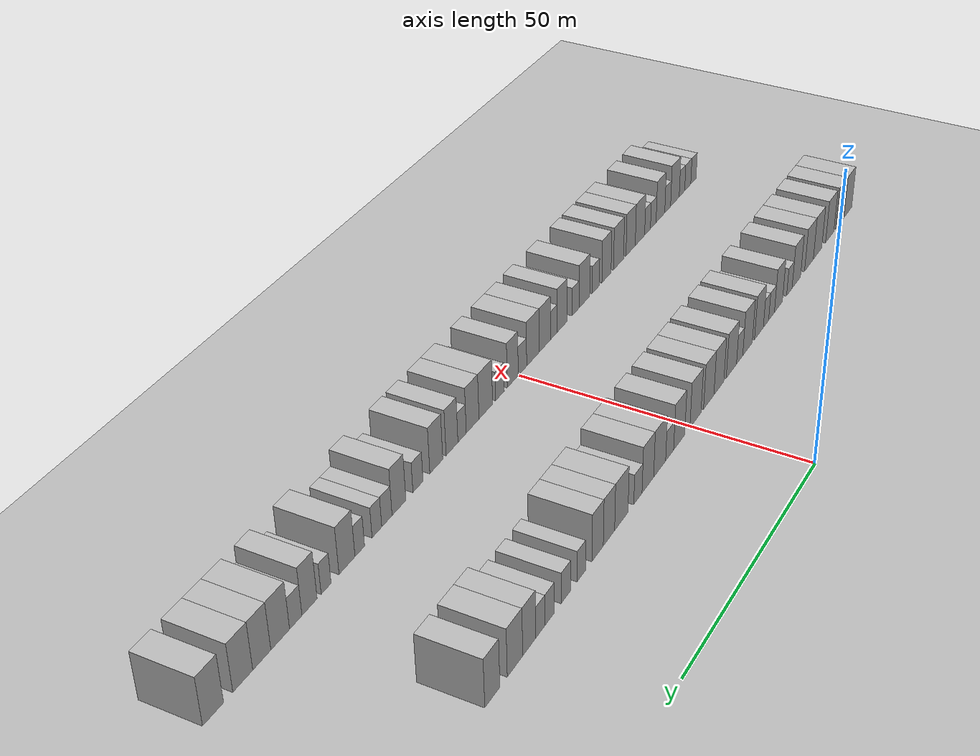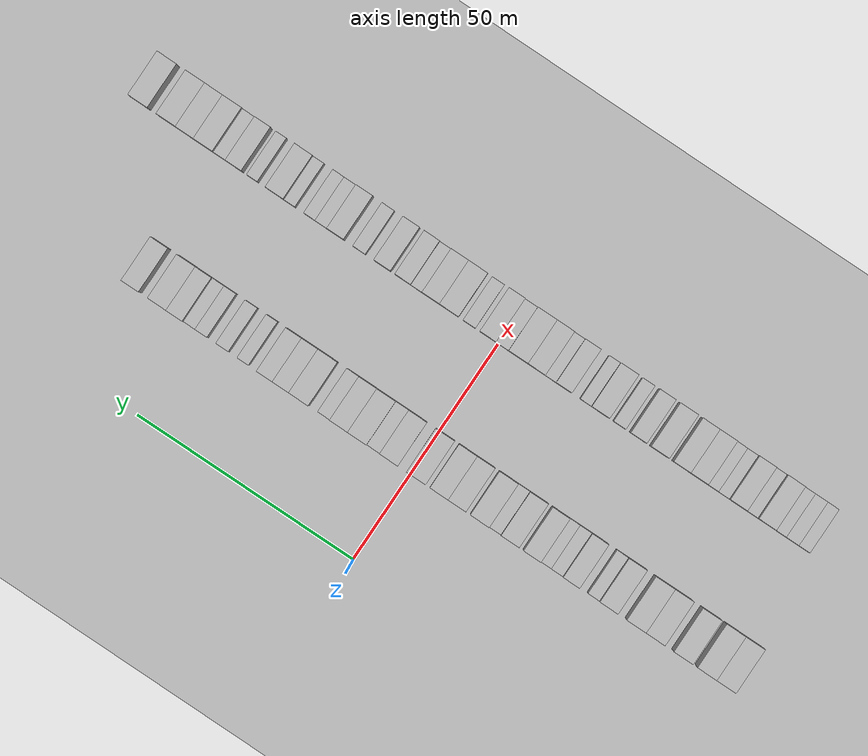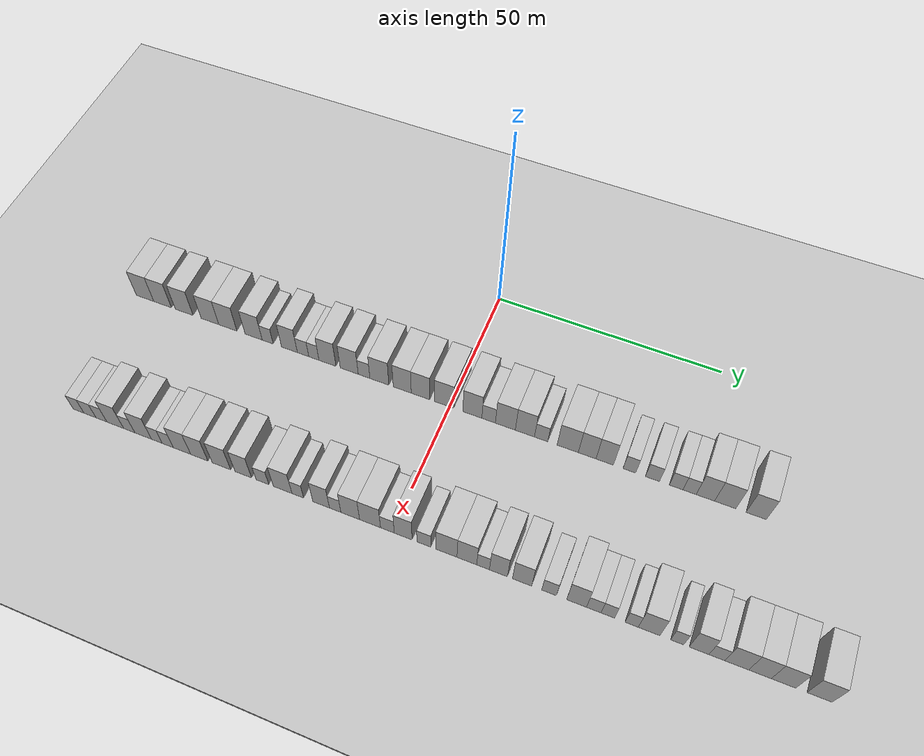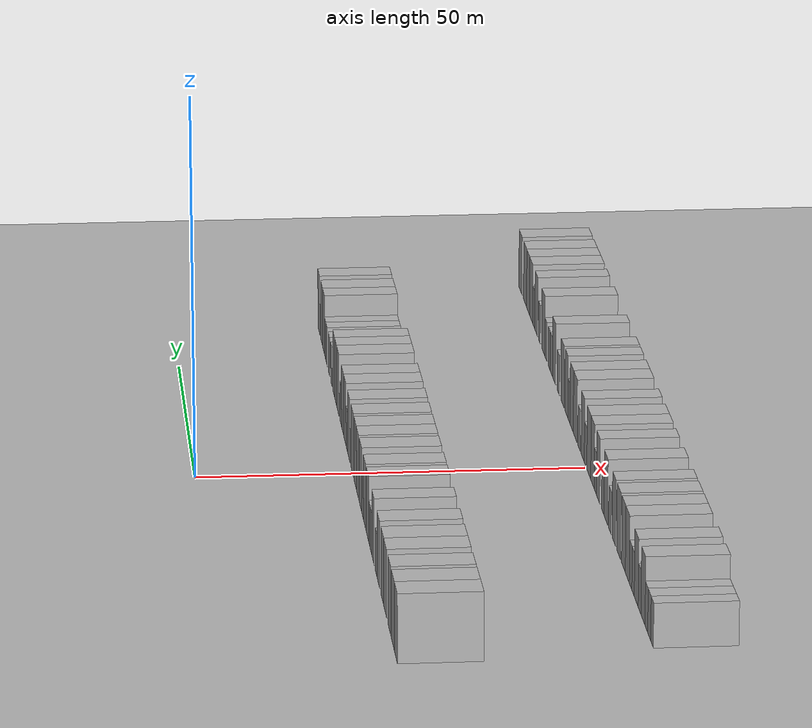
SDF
<sdf version="1.6">
 <world name="default">
  <include><name>ground_plane_1</name><uri>model://HANNAS_ground_plane</uri></include>
  <include>
   <name>ground_plane_2</name>
   <uri>model://HANNAS_ground_plane</uri>
   <pose>100 0 0  0 0 0</pose>
  </include>
  <model name="building_40">
   <static>1</static>
   <pose>25.0000 -72.2485 0 0.000000 0.000000 0.000000</pose>
   <link name="link">
    <pose>0 0 4.50 0 0 0</pose>
    <collision name="collision"><geometry><box><size>10.0000 4.4059 9.0000</size></box></geometry></collision>
    <visual name="visual">
     <cast_shadows>0</cast_shadows>
     <geometry><box><size>10.0000 4.4059 9.0000</size></box></geometry>
     <material>
      <script>
       <uri>model://HANNAS_wall/materials/scripts</uri>
       <uri>model://HANNAS_wall/materials/textures</uri>
       <name>vrc/HANNAS_wall</name>
      </script>
     </material>
    </visual>
   </link>
  </model>
  <model name="building_41">
   <static>1</static>
   <pose>25.0000 -67.8349 0 0.000000 0.000000 0.000000</pose>
   <link name="link">
    <pose>0 0 4.50 0 0 0</pose>
    <collision name="collision"><geometry><box><size>10.0000 4.4214 9.0000</size></box></geometry></collision>
    <visual name="visual">
     <cast_shadows>0</cast_shadows>
     <geometry><box><size>10.0000 4.4214 9.0000</size></box></geometry>
     <material>
      <script>
       <uri>model://HANNAS_wall/materials/scripts</uri>
       <uri>model://HANNAS_wall/materials/textures</uri>
       <name>vrc/HANNAS_wall</name>
      </script>
     </material>
    </visual>
   </link>
  </model>
  <model name="building_42">
   <static>1</static>
   <pose>25.0000 -62.4204 0 0.000000 0.000000 0.000000</pose>
   <link name="link">
    <pose>0 0 4.50 0 0 0</pose>
    <collision name="collision"><geometry><box><size>10.0000 4.4075 9.0000</size></box></geometry></collision>
    <visual name="visual">
     <cast_shadows>0</cast_shadows>
     <geometry><box><size>10.0000 4.4075 9.0000</size></box></geometry>
     <material>
      <script>
       <uri>model://HANNAS_wall/materials/scripts</uri>
       <uri>model://HANNAS_wall/materials/textures</uri>
       <name>vrc/HANNAS_wall</name>
      </script>
     </material>
    </visual>
   </link>
  </model>
  <model name="building_43">
   <static>1</static>
   <pose>25.0000 -56.0462 0 0.000000 0.000000 0.000000</pose>
   <link name="link">
    <pose>0 0 4.50 0 0 0</pose>
    <collision name="collision"><geometry><box><size>10.0000 4.3410 9.0000</size></box></geometry></collision>
    <visual name="visual">
     <cast_shadows>0</cast_shadows>
     <geometry><box><size>10.0000 4.3410 9.0000</size></box></geometry>
     <material>
      <script>
       <uri>model://HANNAS_wall/materials/scripts</uri>
       <uri>model://HANNAS_wall/materials/textures</uri>
       <name>vrc/HANNAS_wall</name>
      </script>
     </material>
    </visual>
   </link>
  </model>
  <model name="building_44">
   <static>1</static>
   <pose>25.0000 -51.6642 0 0.000000 0.000000 0.000000</pose>
   <link name="link">
    <pose>0 0 4.50 0 0 0</pose>
    <collision name="collision"><geometry><box><size>10.0000 4.4228 9.0000</size></box></geometry></collision>
    <visual name="visual">
     <cast_shadows>0</cast_shadows>
     <geometry><box><size>10.0000 4.4228 9.0000</size></box></geometry>
     <material>
      <script>
       <uri>model://HANNAS_wall/materials/scripts</uri>
       <uri>model://HANNAS_wall/materials/textures</uri>
       <name>vrc/HANNAS_wall</name>
      </script>
     </material>
    </visual>
   </link>
  </model>
  <model name="building_45">
   <static>1</static>
   <pose>25.0000 -45.3757 0 0.000000 0.000000 0.000000</pose>
   <link name="link">
    <pose>0 0 4.50 0 0 0</pose>
    <collision name="collision"><geometry><box><size>10.0000 4.1543 9.0000</size></box></geometry></collision>
    <visual name="visual">
     <cast_shadows>0</cast_shadows>
     <geometry><box><size>10.0000 4.1543 9.0000</size></box></geometry>
     <material>
      <script>
       <uri>model://HANNAS_wall/materials/scripts</uri>
       <uri>model://HANNAS_wall/materials/textures</uri>
       <name>vrc/HANNAS_wall</name>
      </script>
     </material>
    </visual>
   </link>
  </model>
  <model name="building_46">
   <static>1</static>
   <pose>25.0000 -41.9876 0 0.000000 0.000000 0.000000</pose>
   <link name="link">
    <pose>0 0 3.00 0 0 0</pose>
    <collision name="collision"><geometry><box><size>10.0000 2.6219 6.0000</size></box></geometry></collision>
    <visual name="visual">
     <cast_shadows>0</cast_shadows>
     <geometry><box><size>10.0000 2.6219 6.0000</size></box></geometry>
     <material>
      <script>
       <uri>model://HANNAS_wall/materials/scripts</uri>
       <uri>model://HANNAS_wall/materials/textures</uri>
       <name>vrc/HANNAS_wall</name>
      </script>
     </material>
    </visual>
   </link>
  </model>
  <model name="building_47">
   <static>1</static>
   <pose>25.0000 -36.7906 0 0.000000 0.000000 0.000000</pose>
   <link name="link">
    <pose>0 0 4.50 0 0 0</pose>
    <collision name="collision"><geometry><box><size>10.0000 3.7721 9.0000</size></box></geometry></collision>
    <visual name="visual">
     <cast_shadows>0</cast_shadows>
     <geometry><box><size>10.0000 3.7721 9.0000</size></box></geometry>
     <material>
      <script>
       <uri>model://HANNAS_wall/materials/scripts</uri>
       <uri>model://HANNAS_wall/materials/textures</uri>
       <name>vrc/HANNAS_wall</name>
      </script>
     </material>
    </visual>
   </link>
  </model>
  <model name="building_48">
   <static>1</static>
   <pose>25.0000 -33.5613 0 0.000000 0.000000 0.000000</pose>
   <link name="link">
    <pose>0 0 3.00 0 0 0</pose>
    <collision name="collision"><geometry><box><size>10.0000 2.6865 6.0000</size></box></geometry></collision>
    <visual name="visual">
     <cast_shadows>0</cast_shadows>
     <geometry><box><size>10.0000 2.6865 6.0000</size></box></geometry>
     <material>
      <script>
       <uri>model://HANNAS_wall/materials/scripts</uri>
       <uri>model://HANNAS_wall/materials/textures</uri>
       <name>vrc/HANNAS_wall</name>
      </script>
     </material>
    </visual>
   </link>
  </model>
  <model name="building_49">
   <static>1</static>
   <pose>25.0000 -31.0136 0 0.000000 0.000000 0.000000</pose>
   <link name="link">
    <pose>0 0 3.00 0 0 0</pose>
    <collision name="collision"><geometry><box><size>10.0000 2.4090 6.0000</size></box></geometry></collision>
    <visual name="visual">
     <cast_shadows>0</cast_shadows>
     <geometry><box><size>10.0000 2.4090 6.0000</size></box></geometry>
     <material>
      <script>
       <uri>model://HANNAS_wall/materials/scripts</uri>
       <uri>model://HANNAS_wall/materials/textures</uri>
       <name>vrc/HANNAS_wall</name>
      </script>
     </material>
    </visual>
   </link>
  </model>
  <model name="building_50">
   <static>1</static>
   <pose>25.0000 -27.8173 0 0.000000 0.000000 0.000000</pose>
   <link name="link">
    <pose>0 0 4.50 0 0 0</pose>
    <collision name="collision"><geometry><box><size>10.0000 3.9836 9.0000</size></box></geometry></collision>
    <visual name="visual">
     <cast_shadows>0</cast_shadows>
     <geometry><box><size>10.0000 3.9836 9.0000</size></box></geometry>
     <material>
      <script>
       <uri>model://HANNAS_wall/materials/scripts</uri>
       <uri>model://HANNAS_wall/materials/textures</uri>
       <name>vrc/HANNAS_wall</name>
      </script>
     </material>
    </visual>
   </link>
  </model>
  <model name="building_51">
   <static>1</static>
   <pose>25.0000 -22.7435 0 0.000000 0.000000 0.000000</pose>
   <link name="link">
    <pose>0 0 4.50 0 0 0</pose>
    <collision name="collision"><geometry><box><size>10.0000 4.1639 9.0000</size></box></geometry></collision>
    <visual name="visual">
     <cast_shadows>0</cast_shadows>
     <geometry><box><size>10.0000 4.1639 9.0000</size></box></geometry>
     <material>
      <script>
       <uri>model://HANNAS_wall/materials/scripts</uri>
       <uri>model://HANNAS_wall/materials/textures</uri>
       <name>vrc/HANNAS_wall</name>
      </script>
     </material>
    </visual>
   </link>
  </model>
  <model name="building_52">
   <static>1</static>
   <pose>25.0000 -19.3129 0 0.000000 0.000000 0.000000</pose>
   <link name="link">
    <pose>0 0 3.00 0 0 0</pose>
    <collision name="collision"><geometry><box><size>10.0000 2.6973 6.0000</size></box></geometry></collision>
    <visual name="visual">
     <cast_shadows>0</cast_shadows>
     <geometry><box><size>10.0000 2.6973 6.0000</size></box></geometry>
     <material>
      <script>
       <uri>model://HANNAS_wall/materials/scripts</uri>
       <uri>model://HANNAS_wall/materials/textures</uri>
       <name>vrc/HANNAS_wall</name>
      </script>
     </material>
    </visual>
   </link>
  </model>
  <model name="building_53">
   <static>1</static>
   <pose>25.0000 -15.7934 0 0.000000 0.000000 0.000000</pose>
   <link name="link">
    <pose>0 0 4.50 0 0 0</pose>
    <collision name="collision"><geometry><box><size>10.0000 4.3418 9.0000</size></box></geometry></collision>
    <visual name="visual">
     <cast_shadows>0</cast_shadows>
     <geometry><box><size>10.0000 4.3418 9.0000</size></box></geometry>
     <material>
      <script>
       <uri>model://HANNAS_wall/materials/scripts</uri>
       <uri>model://HANNAS_wall/materials/textures</uri>
       <name>vrc/HANNAS_wall</name>
      </script>
     </material>
    </visual>
   </link>
  </model>
  <model name="building_54">
   <static>1</static>
   <pose>25.0000 -10.5797 0 0.000000 0.000000 0.000000</pose>
   <link name="link">
    <pose>0 0 4.50 0 0 0</pose>
    <collision name="collision"><geometry><box><size>10.0000 4.0856 9.0000</size></box></geometry></collision>
    <visual name="visual">
     <cast_shadows>0</cast_shadows>
     <geometry><box><size>10.0000 4.0856 9.0000</size></box></geometry>
     <material>
      <script>
       <uri>model://HANNAS_wall/materials/scripts</uri>
       <uri>model://HANNAS_wall/materials/textures</uri>
       <name>vrc/HANNAS_wall</name>
      </script>
     </material>
    </visual>
   </link>
  </model>
  <model name="building_55">
   <static>1</static>
   <pose>25.0000 -6.4519 0 0.000000 0.000000 0.000000</pose>
   <link name="link">
    <pose>0 0 4.50 0 0 0</pose>
    <collision name="collision"><geometry><box><size>10.0000 4.1700 9.0000</size></box></geometry></collision>
    <visual name="visual">
     <cast_shadows>0</cast_shadows>
     <geometry><box><size>10.0000 4.1700 9.0000</size></box></geometry>
     <material>
      <script>
       <uri>model://HANNAS_wall/materials/scripts</uri>
       <uri>model://HANNAS_wall/materials/textures</uri>
       <name>vrc/HANNAS_wall</name>
      </script>
     </material>
    </visual>
   </link>
  </model>
  <model name="building_56">
   <static>1</static>
   <pose>25.0000 -1.1857 0 0.000000 0.000000 0.000000</pose>
   <link name="link">
    <pose>0 0 4.50 0 0 0</pose>
    <collision name="collision"><geometry><box><size>10.0000 4.3624 9.0000</size></box></geometry></collision>
    <visual name="visual">
     <cast_shadows>0</cast_shadows>
     <geometry><box><size>10.0000 4.3624 9.0000</size></box></geometry>
     <material>
      <script>
       <uri>model://HANNAS_wall/materials/scripts</uri>
       <uri>model://HANNAS_wall/materials/textures</uri>
       <name>vrc/HANNAS_wall</name>
      </script>
     </material>
    </visual>
   </link>
  </model>
  <model name="building_57">
   <static>1</static>
   <pose>25.0000 5.0952 0 0.000000 0.000000 0.000000</pose>
   <link name="link">
    <pose>0 0 4.50 0 0 0</pose>
    <collision name="collision"><geometry><box><size>10.0000 4.1995 9.0000</size></box></geometry></collision>
    <visual name="visual">
     <cast_shadows>0</cast_shadows>
     <geometry><box><size>10.0000 4.1995 9.0000</size></box></geometry>
     <material>
      <script>
       <uri>model://HANNAS_wall/materials/scripts</uri>
       <uri>model://HANNAS_wall/materials/textures</uri>
       <name>vrc/HANNAS_wall</name>
      </script>
     </material>
    </visual>
   </link>
  </model>
  <model name="building_58">
   <static>1</static>
   <pose>25.0000 8.6766 0 0.000000 0.000000 0.000000</pose>
   <link name="link">
    <pose>0 0 3.00 0 0 0</pose>
    <collision name="collision"><geometry><box><size>10.0000 2.9633 6.0000</size></box></geometry></collision>
    <visual name="visual">
     <cast_shadows>0</cast_shadows>
     <geometry><box><size>10.0000 2.9633 6.0000</size></box></geometry>
     <material>
      <script>
       <uri>model://HANNAS_wall/materials/scripts</uri>
       <uri>model://HANNAS_wall/materials/textures</uri>
       <name>vrc/HANNAS_wall</name>
      </script>
     </material>
    </visual>
   </link>
  </model>
  <model name="building_59">
   <static>1</static>
   <pose>25.0000 12.3360 0 0.000000 0.000000 0.000000</pose>
   <link name="link">
    <pose>0 0 4.50 0 0 0</pose>
    <collision name="collision"><geometry><box><size>10.0000 4.3555 9.0000</size></box></geometry></collision>
    <visual name="visual">
     <cast_shadows>0</cast_shadows>
     <geometry><box><size>10.0000 4.3555 9.0000</size></box></geometry>
     <material>
      <script>
       <uri>model://HANNAS_wall/materials/scripts</uri>
       <uri>model://HANNAS_wall/materials/textures</uri>
       <name>vrc/HANNAS_wall</name>
      </script>
     </material>
    </visual>
   </link>
  </model>
  <model name="building_60">
   <static>1</static>
   <pose>25.0000 16.5765 0 0.000000 0.000000 0.000000</pose>
   <link name="link">
    <pose>0 0 4.50 0 0 0</pose>
    <collision name="collision"><geometry><box><size>10.0000 4.1255 9.0000</size></box></geometry></collision>
    <visual name="visual">
     <cast_shadows>0</cast_shadows>
     <geometry><box><size>10.0000 4.1255 9.0000</size></box></geometry>
     <material>
      <script>
       <uri>model://HANNAS_wall/materials/scripts</uri>
       <uri>model://HANNAS_wall/materials/textures</uri>
       <name>vrc/HANNAS_wall</name>
      </script>
     </material>
    </visual>
   </link>
  </model>
  <model name="building_61">
   <static>1</static>
   <pose>25.0000 20.0691 0 0.000000 0.000000 0.000000</pose>
   <link name="link">
    <pose>0 0 3.00 0 0 0</pose>
    <collision name="collision"><geometry><box><size>10.0000 2.8598 6.0000</size></box></geometry></collision>
    <visual name="visual">
     <cast_shadows>0</cast_shadows>
     <geometry><box><size>10.0000 2.8598 6.0000</size></box></geometry>
     <material>
      <script>
       <uri>model://HANNAS_wall/materials/scripts</uri>
       <uri>model://HANNAS_wall/materials/textures</uri>
       <name>vrc/HANNAS_wall</name>
      </script>
     </material>
    </visual>
   </link>
  </model>
  <model name="building_62">
   <static>1</static>
   <pose>25.0000 25.7467 0 0.000000 0.000000 0.000000</pose>
   <link name="link">
    <pose>0 0 4.50 0 0 0</pose>
    <collision name="collision"><geometry><box><size>10.0000 4.4954 9.0000</size></box></geometry></collision>
    <visual name="visual">
     <cast_shadows>0</cast_shadows>
     <geometry><box><size>10.0000 4.4954 9.0000</size></box></geometry>
     <material>
      <script>
       <uri>model://HANNAS_wall/materials/scripts</uri>
       <uri>model://HANNAS_wall/materials/textures</uri>
       <name>vrc/HANNAS_wall</name>
      </script>
     </material>
    </visual>
   </link>
  </model>
  <model name="building_63">
   <static>1</static>
   <pose>25.0000 29.8601 0 0.000000 0.000000 0.000000</pose>
   <link name="link">
    <pose>0 0 4.50 0 0 0</pose>
    <collision name="collision"><geometry><box><size>10.0000 3.7314 9.0000</size></box></geometry></collision>
    <visual name="visual">
     <cast_shadows>0</cast_shadows>
     <geometry><box><size>10.0000 3.7314 9.0000</size></box></geometry>
     <material>
      <script>
       <uri>model://HANNAS_wall/materials/scripts</uri>
       <uri>model://HANNAS_wall/materials/textures</uri>
       <name>vrc/HANNAS_wall</name>
      </script>
     </material>
    </visual>
   </link>
  </model>
  <model name="building_64">
   <static>1</static>
   <pose>25.0000 33.5474 0 0.000000 0.000000 0.000000</pose>
   <link name="link">
    <pose>0 0 4.50 0 0 0</pose>
    <collision name="collision"><geometry><box><size>10.0000 3.6432 9.0000</size></box></geometry></collision>
    <visual name="visual">
     <cast_shadows>0</cast_shadows>
     <geometry><box><size>10.0000 3.6432 9.0000</size></box></geometry>
     <material>
      <script>
       <uri>model://HANNAS_wall/materials/scripts</uri>
       <uri>model://HANNAS_wall/materials/textures</uri>
       <name>vrc/HANNAS_wall</name>
      </script>
     </material>
    </visual>
   </link>
  </model>
  <model name="building_65">
   <static>1</static>
   <pose>25.0000 38.6850 0 0.000000 0.000000 0.000000</pose>
   <link name="link">
    <pose>0 0 3.00 0 0 0</pose>
    <collision name="collision"><geometry><box><size>10.0000 2.6320 6.0000</size></box></geometry></collision>
    <visual name="visual">
     <cast_shadows>0</cast_shadows>
     <geometry><box><size>10.0000 2.6320 6.0000</size></box></geometry>
     <material>
      <script>
       <uri>model://HANNAS_wall/materials/scripts</uri>
       <uri>model://HANNAS_wall/materials/textures</uri>
       <name>vrc/HANNAS_wall</name>
      </script>
     </material>
    </visual>
   </link>
  </model>
  <model name="building_66">
   <static>1</static>
   <pose>25.0000 43.4471 0 0.000000 0.000000 0.000000</pose>
   <link name="link">
    <pose>0 0 3.00 0 0 0</pose>
    <collision name="collision"><geometry><box><size>10.0000 2.8922 6.0000</size></box></geometry></collision>
    <visual name="visual">
     <cast_shadows>0</cast_shadows>
     <geometry><box><size>10.0000 2.8922 6.0000</size></box></geometry>
     <material>
      <script>
       <uri>model://HANNAS_wall/materials/scripts</uri>
       <uri>model://HANNAS_wall/materials/textures</uri>
       <name>vrc/HANNAS_wall</name>
      </script>
     </material>
    </visual>
   </link>
  </model>
  <model name="building_67">
   <static>1</static>
   <pose>25.0000 48.2819 0 0.000000 0.000000 0.000000</pose>
   <link name="link">
    <pose>0 0 3.00 0 0 0</pose>
    <collision name="collision"><geometry><box><size>10.0000 2.7774 6.0000</size></box></geometry></collision>
    <visual name="visual">
     <cast_shadows>0</cast_shadows>
     <geometry><box><size>10.0000 2.7774 6.0000</size></box></geometry>
     <material>
      <script>
       <uri>model://HANNAS_wall/materials/scripts</uri>
       <uri>model://HANNAS_wall/materials/textures</uri>
       <name>vrc/HANNAS_wall</name>
      </script>
     </material>
    </visual>
   </link>
  </model>
  <model name="building_68">
   <static>1</static>
   <pose>25.0000 51.0041 0 0.000000 0.000000 0.000000</pose>
   <link name="link">
    <pose>0 0 3.00 0 0 0</pose>
    <collision name="collision"><geometry><box><size>10.0000 2.6670 6.0000</size></box></geometry></collision>
    <visual name="visual">
     <cast_shadows>0</cast_shadows>
     <geometry><box><size>10.0000 2.6670 6.0000</size></box></geometry>
     <material>
      <script>
       <uri>model://HANNAS_wall/materials/scripts</uri>
       <uri>model://HANNAS_wall/materials/textures</uri>
       <name>vrc/HANNAS_wall</name>
      </script>
     </material>
    </visual>
   </link>
  </model>
  <model name="building_69">
   <static>1</static>
   <pose>25.0000 54.1952 0 0.000000 0.000000 0.000000</pose>
   <link name="link">
    <pose>0 0 4.50 0 0 0</pose>
    <collision name="collision"><geometry><box><size>10.0000 3.7153 9.0000</size></box></geometry></collision>
    <visual name="visual">
     <cast_shadows>0</cast_shadows>
     <geometry><box><size>10.0000 3.7153 9.0000</size></box></geometry>
     <material>
      <script>
       <uri>model://HANNAS_wall/materials/scripts</uri>
       <uri>model://HANNAS_wall/materials/textures</uri>
       <name>vrc/HANNAS_wall</name>
      </script>
     </material>
    </visual>
   </link>
  </model>
  <model name="building_70">
   <static>1</static>
   <pose>25.0000 58.1823 0 0.000000 0.000000 0.000000</pose>
   <link name="link">
    <pose>0 0 4.50 0 0 0</pose>
    <collision name="collision"><geometry><box><size>10.0000 4.2589 9.0000</size></box></geometry></collision>
    <visual name="visual">
     <cast_shadows>0</cast_shadows>
     <geometry><box><size>10.0000 4.2589 9.0000</size></box></geometry>
     <material>
      <script>
       <uri>model://HANNAS_wall/materials/scripts</uri>
       <uri>model://HANNAS_wall/materials/textures</uri>
       <name>vrc/HANNAS_wall</name>
      </script>
     </material>
    </visual>
   </link>
  </model>
  <model name="building_71">
   <static>1</static>
   <pose>25.0000 64.3200 0 0.000000 0.000000 0.000000</pose>
   <link name="link">
    <pose>0 0 4.50 0 0 0</pose>
    <collision name="collision"><geometry><box><size>10.0000 4.0165 9.0000</size></box></geometry></collision>
    <visual name="visual">
     <cast_shadows>0</cast_shadows>
     <geometry><box><size>10.0000 4.0165 9.0000</size></box></geometry>
     <material>
      <script>
       <uri>model://HANNAS_wall/materials/scripts</uri>
       <uri>model://HANNAS_wall/materials/textures</uri>
       <name>vrc/HANNAS_wall</name>
      </script>
     </material>
    </visual>
   </link>
  </model>
  <model name="building_140">
   <static>1</static>
   <pose>55.0000 -70.2596 0 0.000000 0.000000 0.000000</pose>
   <link name="link">
    <pose>0 0 3.00 0 0 0</pose>
    <collision name="collision"><geometry><box><size>10.0000 2.5643 6.0000</size></box></geometry></collision>
    <visual name="visual">
     <cast_shadows>0</cast_shadows>
     <geometry><box><size>10.0000 2.5643 6.0000</size></box></geometry>
     <material>
      <script>
       <uri>model://HANNAS_wall/materials/scripts</uri>
       <uri>model://HANNAS_wall/materials/textures</uri>
       <name>vrc/HANNAS_wall</name>
      </script>
     </material>
    </visual>
   </link>
  </model>
  <model name="building_141">
   <static>1</static>
   <pose>55.0000 -67.5382 0 0.000000 0.000000 0.000000</pose>
   <link name="link">
    <pose>0 0 3.00 0 0 0</pose>
    <collision name="collision"><geometry><box><size>10.0000 2.8784 6.0000</size></box></geometry></collision>
    <visual name="visual">
     <cast_shadows>0</cast_shadows>
     <geometry><box><size>10.0000 2.8784 6.0000</size></box></geometry>
     <material>
      <script>
       <uri>model://HANNAS_wall/materials/scripts</uri>
       <uri>model://HANNAS_wall/materials/textures</uri>
       <name>vrc/HANNAS_wall</name>
      </script>
     </material>
    </visual>
   </link>
  </model>
  <model name="building_142">
   <static>1</static>
   <pose>55.0000 -64.8120 0 0.000000 0.000000 0.000000</pose>
   <link name="link">
    <pose>0 0 3.00 0 0 0</pose>
    <collision name="collision"><geometry><box><size>10.0000 2.5741 6.0000</size></box></geometry></collision>
    <visual name="visual">
     <cast_shadows>0</cast_shadows>
     <geometry><box><size>10.0000 2.5741 6.0000</size></box></geometry>
     <material>
      <script>
       <uri>model://HANNAS_wall/materials/scripts</uri>
       <uri>model://HANNAS_wall/materials/textures</uri>
       <name>vrc/HANNAS_wall</name>
      </script>
     </material>
    </visual>
   </link>
  </model>
  <model name="building_143">
   <static>1</static>
   <pose>55.0000 -61.5402 0 0.000000 0.000000 0.000000</pose>
   <link name="link">
    <pose>0 0 4.50 0 0 0</pose>
    <collision name="collision"><geometry><box><size>10.0000 3.9696 9.0000</size></box></geometry></collision>
    <visual name="visual">
     <cast_shadows>0</cast_shadows>
     <geometry><box><size>10.0000 3.9696 9.0000</size></box></geometry>
     <material>
      <script>
       <uri>model://HANNAS_wall/materials/scripts</uri>
       <uri>model://HANNAS_wall/materials/textures</uri>
       <name>vrc/HANNAS_wall</name>
      </script>
     </material>
    </visual>
   </link>
  </model>
  <model name="building_144">
   <static>1</static>
   <pose>55.0000 -58.2380 0 0.000000 0.000000 0.000000</pose>
   <link name="link">
    <pose>0 0 3.00 0 0 0</pose>
    <collision name="collision"><geometry><box><size>10.0000 2.6347 6.0000</size></box></geometry></collision>
    <visual name="visual">
     <cast_shadows>0</cast_shadows>
     <geometry><box><size>10.0000 2.6347 6.0000</size></box></geometry>
     <material>
      <script>
       <uri>model://HANNAS_wall/materials/scripts</uri>
       <uri>model://HANNAS_wall/materials/textures</uri>
       <name>vrc/HANNAS_wall</name>
      </script>
     </material>
    </visual>
   </link>
  </model>
  <model name="building_145">
   <static>1</static>
   <pose>55.0000 -54.9687 0 0.000000 0.000000 0.000000</pose>
   <link name="link">
    <pose>0 0 4.50 0 0 0</pose>
    <collision name="collision"><geometry><box><size>10.0000 3.9039 9.0000</size></box></geometry></collision>
    <visual name="visual">
     <cast_shadows>0</cast_shadows>
     <geometry><box><size>10.0000 3.9039 9.0000</size></box></geometry>
     <material>
      <script>
       <uri>model://HANNAS_wall/materials/scripts</uri>
       <uri>model://HANNAS_wall/materials/textures</uri>
       <name>vrc/HANNAS_wall</name>
      </script>
     </material>
    </visual>
   </link>
  </model>
  <model name="building_146">
   <static>1</static>
   <pose>55.0000 -51.7796 0 0.000000 0.000000 0.000000</pose>
   <link name="link">
    <pose>0 0 3.00 0 0 0</pose>
    <collision name="collision"><geometry><box><size>10.0000 2.4742 6.0000</size></box></geometry></collision>
    <visual name="visual">
     <cast_shadows>0</cast_shadows>
     <geometry><box><size>10.0000 2.4742 6.0000</size></box></geometry>
     <material>
      <script>
       <uri>model://HANNAS_wall/materials/scripts</uri>
       <uri>model://HANNAS_wall/materials/textures</uri>
       <name>vrc/HANNAS_wall</name>
      </script>
     </material>
    </visual>
   </link>
  </model>
  <model name="building_147">
   <static>1</static>
   <pose>55.0000 -49.2733 0 0.000000 0.000000 0.000000</pose>
   <link name="link">
    <pose>0 0 3.00 0 0 0</pose>
    <collision name="collision"><geometry><box><size>10.0000 2.5384 6.0000</size></box></geometry></collision>
    <visual name="visual">
     <cast_shadows>0</cast_shadows>
     <geometry><box><size>10.0000 2.5384 6.0000</size></box></geometry>
     <material>
      <script>
       <uri>model://HANNAS_wall/materials/scripts</uri>
       <uri>model://HANNAS_wall/materials/textures</uri>
       <name>vrc/HANNAS_wall</name>
      </script>
     </material>
    </visual>
   </link>
  </model>
  <model name="building_148">
   <static>1</static>
   <pose>55.0000 -45.9915 0 0.000000 0.000000 0.000000</pose>
   <link name="link">
    <pose>0 0 4.50 0 0 0</pose>
    <collision name="collision"><geometry><box><size>10.0000 4.0251 9.0000</size></box></geometry></collision>
    <visual name="visual">
     <cast_shadows>0</cast_shadows>
     <geometry><box><size>10.0000 4.0251 9.0000</size></box></geometry>
     <material>
      <script>
       <uri>model://HANNAS_wall/materials/scripts</uri>
       <uri>model://HANNAS_wall/materials/textures</uri>
       <name>vrc/HANNAS_wall</name>
      </script>
     </material>
    </visual>
   </link>
  </model>
  <model name="building_149">
   <static>1</static>
   <pose>55.0000 -42.0223 0 0.000000 0.000000 0.000000</pose>
   <link name="link">
    <pose>0 0 4.50 0 0 0</pose>
    <collision name="collision"><geometry><box><size>10.0000 3.9133 9.0000</size></box></geometry></collision>
    <visual name="visual">
     <cast_shadows>0</cast_shadows>
     <geometry><box><size>10.0000 3.9133 9.0000</size></box></geometry>
     <material>
      <script>
       <uri>model://HANNAS_wall/materials/scripts</uri>
       <uri>model://HANNAS_wall/materials/textures</uri>
       <name>vrc/HANNAS_wall</name>
      </script>
     </material>
    </visual>
   </link>
  </model>
  <model name="building_150">
   <static>1</static>
   <pose>55.0000 -36.9909 0 0.000000 0.000000 0.000000</pose>
   <link name="link">
    <pose>0 0 4.50 0 0 0</pose>
    <collision name="collision"><geometry><box><size>10.0000 4.1496 9.0000</size></box></geometry></collision>
    <visual name="visual">
     <cast_shadows>0</cast_shadows>
     <geometry><box><size>10.0000 4.1496 9.0000</size></box></geometry>
     <material>
      <script>
       <uri>model://HANNAS_wall/materials/scripts</uri>
       <uri>model://HANNAS_wall/materials/textures</uri>
       <name>vrc/HANNAS_wall</name>
      </script>
     </material>
    </visual>
   </link>
  </model>
  <model name="building_151">
   <static>1</static>
   <pose>55.0000 -32.0722 0 0.000000 0.000000 0.000000</pose>
   <link name="link">
    <pose>0 0 4.50 0 0 0</pose>
    <collision name="collision"><geometry><box><size>10.0000 3.6877 9.0000</size></box></geometry></collision>
    <visual name="visual">
     <cast_shadows>0</cast_shadows>
     <geometry><box><size>10.0000 3.6877 9.0000</size></box></geometry>
     <material>
      <script>
       <uri>model://HANNAS_wall/materials/scripts</uri>
       <uri>model://HANNAS_wall/materials/textures</uri>
       <name>vrc/HANNAS_wall</name>
      </script>
     </material>
    </visual>
   </link>
  </model>
  <model name="building_152">
   <static>1</static>
   <pose>55.0000 -27.8240 0 0.000000 0.000000 0.000000</pose>
   <link name="link">
    <pose>0 0 3.00 0 0 0</pose>
    <collision name="collision"><geometry><box><size>10.0000 2.8088 6.0000</size></box></geometry></collision>
    <visual name="visual">
     <cast_shadows>0</cast_shadows>
     <geometry><box><size>10.0000 2.8088 6.0000</size></box></geometry>
     <material>
      <script>
       <uri>model://HANNAS_wall/materials/scripts</uri>
       <uri>model://HANNAS_wall/materials/textures</uri>
       <name>vrc/HANNAS_wall</name>
      </script>
     </material>
    </visual>
   </link>
  </model>
  <model name="building_153">
   <static>1</static>
   <pose>55.0000 -23.3585 0 0.000000 0.000000 0.000000</pose>
   <link name="link">
    <pose>0 0 4.50 0 0 0</pose>
    <collision name="collision"><geometry><box><size>10.0000 4.1223 9.0000</size></box></geometry></collision>
    <visual name="visual">
     <cast_shadows>0</cast_shadows>
     <geometry><box><size>10.0000 4.1223 9.0000</size></box></geometry>
     <material>
      <script>
       <uri>model://HANNAS_wall/materials/scripts</uri>
       <uri>model://HANNAS_wall/materials/textures</uri>
       <name>vrc/HANNAS_wall</name>
      </script>
     </material>
    </visual>
   </link>
  </model>
  <model name="building_154">
   <static>1</static>
   <pose>55.0000 -20.0248 0 0.000000 0.000000 0.000000</pose>
   <link name="link">
    <pose>0 0 3.00 0 0 0</pose>
    <collision name="collision"><geometry><box><size>10.0000 2.5453 6.0000</size></box></geometry></collision>
    <visual name="visual">
     <cast_shadows>0</cast_shadows>
     <geometry><box><size>10.0000 2.5453 6.0000</size></box></geometry>
     <material>
      <script>
       <uri>model://HANNAS_wall/materials/scripts</uri>
       <uri>model://HANNAS_wall/materials/textures</uri>
       <name>vrc/HANNAS_wall</name>
      </script>
     </material>
    </visual>
   </link>
  </model>
  <model name="building_155">
   <static>1</static>
   <pose>55.0000 -14.9511 0 0.000000 0.000000 0.000000</pose>
   <link name="link">
    <pose>0 0 4.50 0 0 0</pose>
    <collision name="collision"><geometry><box><size>10.0000 3.6022 9.0000</size></box></geometry></collision>
    <visual name="visual">
     <cast_shadows>0</cast_shadows>
     <geometry><box><size>10.0000 3.6022 9.0000</size></box></geometry>
     <material>
      <script>
       <uri>model://HANNAS_wall/materials/scripts</uri>
       <uri>model://HANNAS_wall/materials/textures</uri>
       <name>vrc/HANNAS_wall</name>
      </script>
     </material>
    </visual>
   </link>
  </model>
  <model name="building_156">
   <static>1</static>
   <pose>55.0000 -11.9181 0 0.000000 0.000000 0.000000</pose>
   <link name="link">
    <pose>0 0 3.00 0 0 0</pose>
    <collision name="collision"><geometry><box><size>10.0000 2.4638 6.0000</size></box></geometry></collision>
    <visual name="visual">
     <cast_shadows>0</cast_shadows>
     <geometry><box><size>10.0000 2.4638 6.0000</size></box></geometry>
     <material>
      <script>
       <uri>model://HANNAS_wall/materials/scripts</uri>
       <uri>model://HANNAS_wall/materials/textures</uri>
       <name>vrc/HANNAS_wall</name>
      </script>
     </material>
    </visual>
   </link>
  </model>
  <model name="building_157">
   <static>1</static>
   <pose>55.0000 -8.6954 0 0.000000 0.000000 0.000000</pose>
   <link name="link">
    <pose>0 0 4.50 0 0 0</pose>
    <collision name="collision"><geometry><box><size>10.0000 3.9814 9.0000</size></box></geometry></collision>
    <visual name="visual">
     <cast_shadows>0</cast_shadows>
     <geometry><box><size>10.0000 3.9814 9.0000</size></box></geometry>
     <material>
      <script>
       <uri>model://HANNAS_wall/materials/scripts</uri>
       <uri>model://HANNAS_wall/materials/textures</uri>
       <name>vrc/HANNAS_wall</name>
      </script>
     </material>
    </visual>
   </link>
  </model>
  <model name="building_158">
   <static>1</static>
   <pose>55.0000 -4.4865 0 0.000000 0.000000 0.000000</pose>
   <link name="link">
    <pose>0 0 4.50 0 0 0</pose>
    <collision name="collision"><geometry><box><size>10.0000 4.4363 9.0000</size></box></geometry></collision>
    <visual name="visual">
     <cast_shadows>0</cast_shadows>
     <geometry><box><size>10.0000 4.4363 9.0000</size></box></geometry>
     <material>
      <script>
       <uri>model://HANNAS_wall/materials/scripts</uri>
       <uri>model://HANNAS_wall/materials/textures</uri>
       <name>vrc/HANNAS_wall</name>
      </script>
     </material>
    </visual>
   </link>
  </model>
  <model name="building_159">
   <static>1</static>
   <pose>55.0000 -0.8162 0 0.000000 0.000000 0.000000</pose>
   <link name="link">
    <pose>0 0 3.00 0 0 0</pose>
    <collision name="collision"><geometry><box><size>10.0000 2.9043 6.0000</size></box></geometry></collision>
    <visual name="visual">
     <cast_shadows>0</cast_shadows>
     <geometry><box><size>10.0000 2.9043 6.0000</size></box></geometry>
     <material>
      <script>
       <uri>model://HANNAS_wall/materials/scripts</uri>
       <uri>model://HANNAS_wall/materials/textures</uri>
       <name>vrc/HANNAS_wall</name>
      </script>
     </material>
    </visual>
   </link>
  </model>
  <model name="building_160">
   <static>1</static>
   <pose>55.0000 2.4944 0 0.000000 0.000000 0.000000</pose>
   <link name="link">
    <pose>0 0 4.50 0 0 0</pose>
    <collision name="collision"><geometry><box><size>10.0000 3.7171 9.0000</size></box></geometry></collision>
    <visual name="visual">
     <cast_shadows>0</cast_shadows>
     <geometry><box><size>10.0000 3.7171 9.0000</size></box></geometry>
     <material>
      <script>
       <uri>model://HANNAS_wall/materials/scripts</uri>
       <uri>model://HANNAS_wall/materials/textures</uri>
       <name>vrc/HANNAS_wall</name>
      </script>
     </material>
    </visual>
   </link>
  </model>
  <model name="building_161">
   <static>1</static>
   <pose>55.0000 6.7826 0 0.000000 0.000000 0.000000</pose>
   <link name="link">
    <pose>0 0 3.00 0 0 0</pose>
    <collision name="collision"><geometry><box><size>10.0000 2.8593 6.0000</size></box></geometry></collision>
    <visual name="visual">
     <cast_shadows>0</cast_shadows>
     <geometry><box><size>10.0000 2.8593 6.0000</size></box></geometry>
     <material>
      <script>
       <uri>model://HANNAS_wall/materials/scripts</uri>
       <uri>model://HANNAS_wall/materials/textures</uri>
       <name>vrc/HANNAS_wall</name>
      </script>
     </material>
    </visual>
   </link>
  </model>
  <model name="building_162">
   <static>1</static>
   <pose>55.0000 11.4094 0 0.000000 0.000000 0.000000</pose>
   <link name="link">
    <pose>0 0 4.50 0 0 0</pose>
    <collision name="collision"><geometry><box><size>10.0000 4.3941 9.0000</size></box></geometry></collision>
    <visual name="visual">
     <cast_shadows>0</cast_shadows>
     <geometry><box><size>10.0000 4.3941 9.0000</size></box></geometry>
     <material>
      <script>
       <uri>model://HANNAS_wall/materials/scripts</uri>
       <uri>model://HANNAS_wall/materials/textures</uri>
       <name>vrc/HANNAS_wall</name>
      </script>
     </material>
    </visual>
   </link>
  </model>
  <model name="building_163">
   <static>1</static>
   <pose>55.0000 15.6147 0 0.000000 0.000000 0.000000</pose>
   <link name="link">
    <pose>0 0 4.50 0 0 0</pose>
    <collision name="collision"><geometry><box><size>10.0000 4.0167 9.0000</size></box></geometry></collision>
    <visual name="visual">
     <cast_shadows>0</cast_shadows>
     <geometry><box><size>10.0000 4.0167 9.0000</size></box></geometry>
     <material>
      <script>
       <uri>model://HANNAS_wall/materials/scripts</uri>
       <uri>model://HANNAS_wall/materials/textures</uri>
       <name>vrc/HANNAS_wall</name>
      </script>
     </material>
    </visual>
   </link>
  </model>
  <model name="building_164">
   <static>1</static>
   <pose>55.0000 18.9188 0 0.000000 0.000000 0.000000</pose>
   <link name="link">
    <pose>0 0 3.00 0 0 0</pose>
    <collision name="collision"><geometry><box><size>10.0000 2.5915 6.0000</size></box></geometry></collision>
    <visual name="visual">
     <cast_shadows>0</cast_shadows>
     <geometry><box><size>10.0000 2.5915 6.0000</size></box></geometry>
     <material>
      <script>
       <uri>model://HANNAS_wall/materials/scripts</uri>
       <uri>model://HANNAS_wall/materials/textures</uri>
       <name>vrc/HANNAS_wall</name>
      </script>
     </material>
    </visual>
   </link>
  </model>
  <model name="building_165">
   <static>1</static>
   <pose>55.0000 22.0199 0 0.000000 0.000000 0.000000</pose>
   <link name="link">
    <pose>0 0 4.50 0 0 0</pose>
    <collision name="collision"><geometry><box><size>10.0000 3.6106 9.0000</size></box></geometry></collision>
    <visual name="visual">
     <cast_shadows>0</cast_shadows>
     <geometry><box><size>10.0000 3.6106 9.0000</size></box></geometry>
     <material>
      <script>
       <uri>model://HANNAS_wall/materials/scripts</uri>
       <uri>model://HANNAS_wall/materials/textures</uri>
       <name>vrc/HANNAS_wall</name>
      </script>
     </material>
    </visual>
   </link>
  </model>
  <model name="building_166">
   <static>1</static>
   <pose>55.0000 26.7420 0 0.000000 0.000000 0.000000</pose>
   <link name="link">
    <pose>0 0 4.50 0 0 0</pose>
    <collision name="collision"><geometry><box><size>10.0000 3.8337 9.0000</size></box></geometry></collision>
    <visual name="visual">
     <cast_shadows>0</cast_shadows>
     <geometry><box><size>10.0000 3.8337 9.0000</size></box></geometry>
     <material>
      <script>
       <uri>model://HANNAS_wall/materials/scripts</uri>
       <uri>model://HANNAS_wall/materials/textures</uri>
       <name>vrc/HANNAS_wall</name>
      </script>
     </material>
    </visual>
   </link>
  </model>
  <model name="building_167">
   <static>1</static>
   <pose>55.0000 32.1127 0 0.000000 0.000000 0.000000</pose>
   <link name="link">
    <pose>0 0 3.00 0 0 0</pose>
    <collision name="collision"><geometry><box><size>10.0000 2.9077 6.0000</size></box></geometry></collision>
    <visual name="visual">
     <cast_shadows>0</cast_shadows>
     <geometry><box><size>10.0000 2.9077 6.0000</size></box></geometry>
     <material>
      <script>
       <uri>model://HANNAS_wall/materials/scripts</uri>
       <uri>model://HANNAS_wall/materials/textures</uri>
       <name>vrc/HANNAS_wall</name>
      </script>
     </material>
    </visual>
   </link>
  </model>
  <model name="building_168">
   <static>1</static>
   <pose>55.0000 37.4971 0 0.000000 0.000000 0.000000</pose>
   <link name="link">
    <pose>0 0 4.50 0 0 0</pose>
    <collision name="collision"><geometry><box><size>10.0000 3.8612 9.0000</size></box></geometry></collision>
    <visual name="visual">
     <cast_shadows>0</cast_shadows>
     <geometry><box><size>10.0000 3.8612 9.0000</size></box></geometry>
     <material>
      <script>
       <uri>model://HANNAS_wall/materials/scripts</uri>
       <uri>model://HANNAS_wall/materials/textures</uri>
       <name>vrc/HANNAS_wall</name>
      </script>
     </material>
    </visual>
   </link>
  </model>
  <model name="building_169">
   <static>1</static>
   <pose>55.0000 40.8422 0 0.000000 0.000000 0.000000</pose>
   <link name="link">
    <pose>0 0 3.00 0 0 0</pose>
    <collision name="collision"><geometry><box><size>10.0000 2.8290 6.0000</size></box></geometry></collision>
    <visual name="visual">
     <cast_shadows>0</cast_shadows>
     <geometry><box><size>10.0000 2.8290 6.0000</size></box></geometry>
     <material>
      <script>
       <uri>model://HANNAS_wall/materials/scripts</uri>
       <uri>model://HANNAS_wall/materials/textures</uri>
       <name>vrc/HANNAS_wall</name>
      </script>
     </material>
    </visual>
   </link>
  </model>
  <model name="building_170">
   <static>1</static>
   <pose>55.0000 43.5596 0 0.000000 0.000000 0.000000</pose>
   <link name="link">
    <pose>0 0 3.00 0 0 0</pose>
    <collision name="collision"><geometry><box><size>10.0000 2.6058 6.0000</size></box></geometry></collision>
    <visual name="visual">
     <cast_shadows>0</cast_shadows>
     <geometry><box><size>10.0000 2.6058 6.0000</size></box></geometry>
     <material>
      <script>
       <uri>model://HANNAS_wall/materials/scripts</uri>
       <uri>model://HANNAS_wall/materials/textures</uri>
       <name>vrc/HANNAS_wall</name>
      </script>
     </material>
    </visual>
   </link>
  </model>
  <model name="building_171">
   <static>1</static>
   <pose>55.0000 48.1177 0 0.000000 0.000000 0.000000</pose>
   <link name="link">
    <pose>0 0 3.00 0 0 0</pose>
    <collision name="collision"><geometry><box><size>10.0000 2.5105 6.0000</size></box></geometry></collision>
    <visual name="visual">
     <cast_shadows>0</cast_shadows>
     <geometry><box><size>10.0000 2.5105 6.0000</size></box></geometry>
     <material>
      <script>
       <uri>model://HANNAS_wall/materials/scripts</uri>
       <uri>model://HANNAS_wall/materials/textures</uri>
       <name>vrc/HANNAS_wall</name>
      </script>
     </material>
    </visual>
   </link>
  </model>
  <model name="building_172">
   <static>1</static>
   <pose>55.0000 51.4322 0 0.000000 0.000000 0.000000</pose>
   <link name="link">
    <pose>0 0 4.50 0 0 0</pose>
    <collision name="collision"><geometry><box><size>10.0000 4.1185 9.0000</size></box></geometry></collision>
    <visual name="visual">
     <cast_shadows>0</cast_shadows>
     <geometry><box><size>10.0000 4.1185 9.0000</size></box></geometry>
     <material>
      <script>
       <uri>model://HANNAS_wall/materials/scripts</uri>
       <uri>model://HANNAS_wall/materials/textures</uri>
       <name>vrc/HANNAS_wall</name>
      </script>
     </material>
    </visual>
   </link>
  </model>
  <model name="building_173">
   <static>1</static>
   <pose>55.0000 56.7303 0 0.000000 0.000000 0.000000</pose>
   <link name="link">
    <pose>0 0 3.00 0 0 0</pose>
    <collision name="collision"><geometry><box><size>10.0000 2.4777 6.0000</size></box></geometry></collision>
    <visual name="visual">
     <cast_shadows>0</cast_shadows>
     <geometry><box><size>10.0000 2.4777 6.0000</size></box></geometry>
     <material>
      <script>
       <uri>model://HANNAS_wall/materials/scripts</uri>
       <uri>model://HANNAS_wall/materials/textures</uri>
       <name>vrc/HANNAS_wall</name>
      </script>
     </material>
    </visual>
   </link>
  </model>
  <model name="building_174">
   <static>1</static>
   <pose>55.0000 60.8066 0 0.000000 0.000000 0.000000</pose>
   <link name="link">
    <pose>0 0 4.50 0 0 0</pose>
    <collision name="collision"><geometry><box><size>10.0000 3.6749 9.0000</size></box></geometry></collision>
    <visual name="visual">
     <cast_shadows>0</cast_shadows>
     <geometry><box><size>10.0000 3.6749 9.0000</size></box></geometry>
     <material>
      <script>
       <uri>model://HANNAS_wall/materials/scripts</uri>
       <uri>model://HANNAS_wall/materials/textures</uri>
       <name>vrc/HANNAS_wall</name>
      </script>
     </material>
    </visual>
   </link>
  </model>
  <model name="building_175">
   <static>1</static>
   <pose>55.0000 64.1197 0 0.000000 0.000000 0.000000</pose>
   <link name="link">
    <pose>0 0 3.00 0 0 0</pose>
    <collision name="collision"><geometry><box><size>10.0000 2.9514 6.0000</size></box></geometry></collision>
    <visual name="visual">
     <cast_shadows>0</cast_shadows>
     <geometry><box><size>10.0000 2.9514 6.0000</size></box></geometry>
     <material>
      <script>
       <uri>model://HANNAS_wall/materials/scripts</uri>
       <uri>model://HANNAS_wall/materials/textures</uri>
       <name>vrc/HANNAS_wall</name>
      </script>
     </material>
    </visual>
   </link>
  </model>
  <model name="building_176">
   <static>1</static>
   <pose>55.0000 67.7822 0 0.000000 0.000000 0.000000</pose>
   <link name="link">
    <pose>0 0 4.50 0 0 0</pose>
    <collision name="collision"><geometry><box><size>10.0000 4.3735 9.0000</size></box></geometry></collision>
    <visual name="visual">
     <cast_shadows>0</cast_shadows>
     <geometry><box><size>10.0000 4.3735 9.0000</size></box></geometry>
     <material>
      <script>
       <uri>model://HANNAS_wall/materials/scripts</uri>
       <uri>model://HANNAS_wall/materials/textures</uri>
       <name>vrc/HANNAS_wall</name>
      </script>
     </material>
    </visual>
   </link>
  </model>
  <model name="building_177">
   <static>1</static>
   <pose>55.0000 72.0140 0 0.000000 0.000000 0.000000</pose>
   <link name="link">
    <pose>0 0 4.50 0 0 0</pose>
    <collision name="collision"><geometry><box><size>10.0000 4.0902 9.0000</size></box></geometry></collision>
    <visual name="visual">
     <cast_shadows>0</cast_shadows>
     <geometry><box><size>10.0000 4.0902 9.0000</size></box></geometry>
     <material>
      <script>
       <uri>model://HANNAS_wall/materials/scripts</uri>
       <uri>model://HANNAS_wall/materials/textures</uri>
       <name>vrc/HANNAS_wall</name>
      </script>
     </material>
    </visual>
   </link>
  </model>
  <model name="building_178">
   <static>1</static>
   <pose>55.0000 76.2609 0 0.000000 0.000000 0.000000</pose>
   <link name="link">
    <pose>0 0 4.50 0 0 0</pose>
    <collision name="collision"><geometry><box><size>10.0000 4.4037 9.0000</size></box></geometry></collision>
    <visual name="visual">
     <cast_shadows>0</cast_shadows>
     <geometry><box><size>10.0000 4.4037 9.0000</size></box></geometry>
     <material>
      <script>
       <uri>model://HANNAS_wall/materials/scripts</uri>
       <uri>model://HANNAS_wall/materials/textures</uri>
       <name>vrc/HANNAS_wall</name>
      </script>
     </material>
    </visual>
   </link>
  </model>
  <model name="building_179">
   <static>1</static>
   <pose>55.0000 82.6978 0 0.000000 0.000000 0.000000</pose>
   <link name="link">
    <pose>0 0 4.50 0 0 0</pose>
    <collision name="collision"><geometry><box><size>10.0000 4.4700 9.0000</size></box></geometry></collision>
    <visual name="visual">
     <cast_shadows>0</cast_shadows>
     <geometry><box><size>10.0000 4.4700 9.0000</size></box></geometry>
     <material>
      <script>
       <uri>model://HANNAS_wall/materials/scripts</uri>
       <uri>model://HANNAS_wall/materials/textures</uri>
       <name>vrc/HANNAS_wall</name>
      </script>
     </material>
    </visual>
   </link>
  </model>
 </world>
</sdf>
